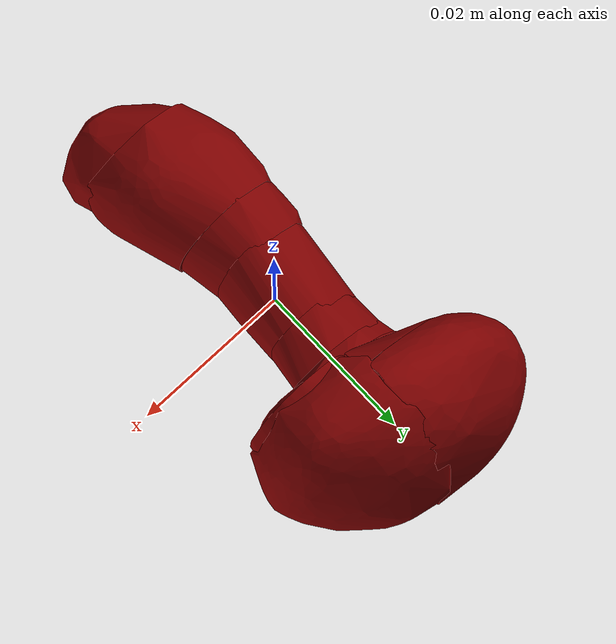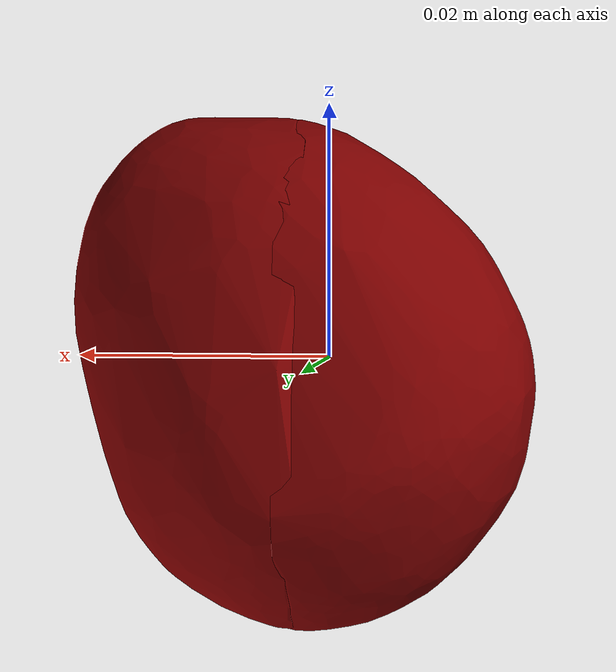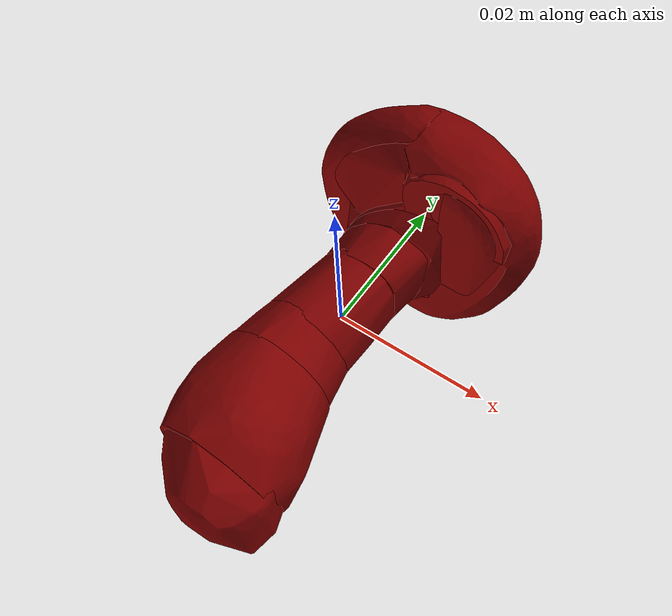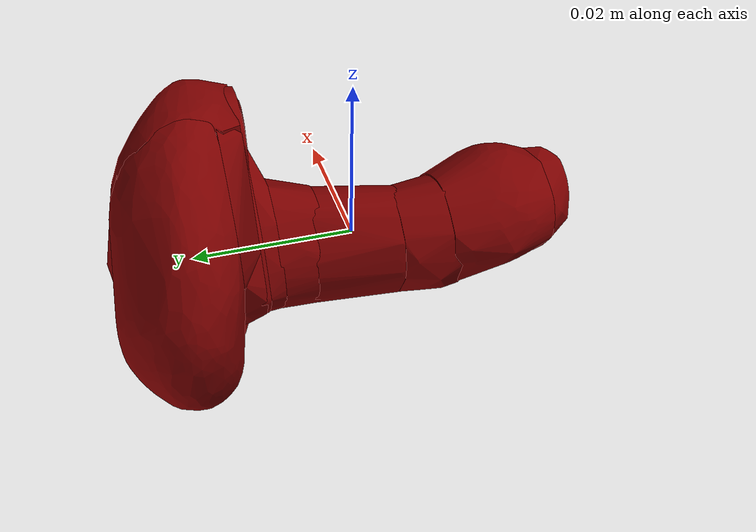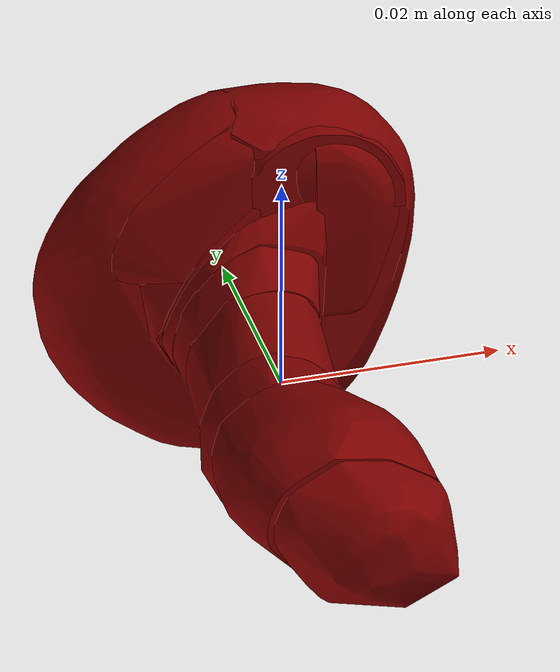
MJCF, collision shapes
<?xml version='1.0' encoding='utf-8'?>
<mujoco model="mushroom_21">
  <asset>
    <mesh file="visual/model_normalized_0.obj" name="model_normalized_0_vis" scale="0.06 0.06 0.06" refquat="0.4999999999999999 0.5 0.5 0.5000000000000001" />
    <texture type="2d" name="image0" file="visual/image0.png" />
    <material name="02_mtl" texture="image0" specular="0.5" shininess="0.010000005" />
    <mesh file="collision/collision_mesh_collision_0.obj" name="mushroom_collision_mesh_0" scale="0.06 0.06 0.06" refquat="0.4999999999999999 0.5 0.5 0.5000000000000001" />
    <mesh file="collision/collision_mesh_collision_1.obj" name="mushroom_collision_mesh_1" scale="0.06 0.06 0.06" refquat="0.4999999999999999 0.5 0.5 0.5000000000000001" />
    <mesh file="collision/collision_mesh_collision_2.obj" name="mushroom_collision_mesh_2" scale="0.06 0.06 0.06" refquat="0.4999999999999999 0.5 0.5 0.5000000000000001" />
    <mesh file="collision/collision_mesh_collision_3.obj" name="mushroom_collision_mesh_3" scale="0.06 0.06 0.06" refquat="0.4999999999999999 0.5 0.5 0.5000000000000001" />
    <mesh file="collision/collision_mesh_collision_4.obj" name="mushroom_collision_mesh_4" scale="0.06 0.06 0.06" refquat="0.4999999999999999 0.5 0.5 0.5000000000000001" />
    <mesh file="collision/collision_mesh_collision_5.obj" name="mushroom_collision_mesh_5" scale="0.06 0.06 0.06" refquat="0.4999999999999999 0.5 0.5 0.5000000000000001" />
    <mesh file="collision/collision_mesh_collision_6.obj" name="mushroom_collision_mesh_6" scale="0.06 0.06 0.06" refquat="0.4999999999999999 0.5 0.5 0.5000000000000001" />
    <mesh file="collision/collision_mesh_collision_7.obj" name="mushroom_collision_mesh_7" scale="0.06 0.06 0.06" refquat="0.4999999999999999 0.5 0.5 0.5000000000000001" />
    <mesh file="collision/collision_mesh_collision_8.obj" name="mushroom_collision_mesh_8" scale="0.06 0.06 0.06" refquat="0.4999999999999999 0.5 0.5 0.5000000000000001" />
    <mesh file="collision/collision_mesh_collision_9.obj" name="mushroom_collision_mesh_9" scale="0.06 0.06 0.06" refquat="0.4999999999999999 0.5 0.5 0.5000000000000001" />
    <mesh file="collision/collision_mesh_collision_10.obj" name="mushroom_collision_mesh_10" scale="0.06 0.06 0.06" refquat="0.4999999999999999 0.5 0.5 0.5000000000000001" />
    <mesh file="collision/collision_mesh_collision_11.obj" name="mushroom_collision_mesh_11" scale="0.06 0.06 0.06" refquat="0.4999999999999999 0.5 0.5 0.5000000000000001" />
    <mesh file="collision/collision_mesh_collision_12.obj" name="mushroom_collision_mesh_12" scale="0.06 0.06 0.06" refquat="0.4999999999999999 0.5 0.5 0.5000000000000001" />
    <mesh file="collision/collision_mesh_collision_13.obj" name="mushroom_collision_mesh_13" scale="0.06 0.06 0.06" refquat="0.4999999999999999 0.5 0.5 0.5000000000000001" />
    <mesh file="collision/collision_mesh_collision_14.obj" name="mushroom_collision_mesh_14" scale="0.06 0.06 0.06" refquat="0.4999999999999999 0.5 0.5 0.5000000000000001" />
    <mesh file="collision/collision_mesh_collision_15.obj" name="mushroom_collision_mesh_15" scale="0.06 0.06 0.06" refquat="0.4999999999999999 0.5 0.5 0.5000000000000001" />
    </asset>
  <default>
    <default class="region">
      <geom group="1" conaffinity="0" contype="0" rgba="0 1 0 0" />
      </default>
    <default class="collision">
      <geom group="0" rgba="0.5 0 0 0.5" density="1000.0" />
      </default>
    </default>
  <worldbody>
    <body>
      <body name="object">
        <geom solimp="0.998 0.998 0.001" solref="0.001 1" density="100" friction="0.95 0.3 0.1" type="mesh" mesh="model_normalized_0_vis" conaffinity="0" contype="0" group="1" material="02_mtl" />
        <geom class="region" name="reg_bbox" type="box" pos="-6.567363128258119e-06 0.00011473977965385462 5.5717734292427476e-05" size="0.016754027160078618 0.0299067870521508 0.018779407194090054" />
        <geom mesh="mushroom_collision_mesh_0" type="mesh" class="collision" />
        <geom mesh="mushroom_collision_mesh_1" type="mesh" class="collision" />
        <geom mesh="mushroom_collision_mesh_2" type="mesh" class="collision" />
        <geom mesh="mushroom_collision_mesh_3" type="mesh" class="collision" />
        <geom mesh="mushroom_collision_mesh_4" type="mesh" class="collision" />
        <geom mesh="mushroom_collision_mesh_5" type="mesh" class="collision" />
        <geom mesh="mushroom_collision_mesh_6" type="mesh" class="collision" />
        <geom mesh="mushroom_collision_mesh_7" type="mesh" class="collision" />
        <geom mesh="mushroom_collision_mesh_8" type="mesh" class="collision" />
        <geom mesh="mushroom_collision_mesh_9" type="mesh" class="collision" />
        <geom mesh="mushroom_collision_mesh_10" type="mesh" class="collision" />
        <geom mesh="mushroom_collision_mesh_11" type="mesh" class="collision" />
        <geom mesh="mushroom_collision_mesh_12" type="mesh" class="collision" />
        <geom mesh="mushroom_collision_mesh_13" type="mesh" class="collision" />
        <geom mesh="mushroom_collision_mesh_14" type="mesh" class="collision" />
        <geom mesh="mushroom_collision_mesh_15" type="mesh" class="collision" />
        </body>
      <site rgba="0 0 0 0" size="0.005" pos="0 0 -0.018723689" name="bottom_site" /><site rgba="0 0 0 0" size="0.005" pos="0 0 0.018835125" name="top_site" /><site rgba="0 0 0 0" size="0.005" pos="0.030021527 0.030021527 0" name="horizontal_radius_site" /></body>
    </worldbody>
  </mujoco>
